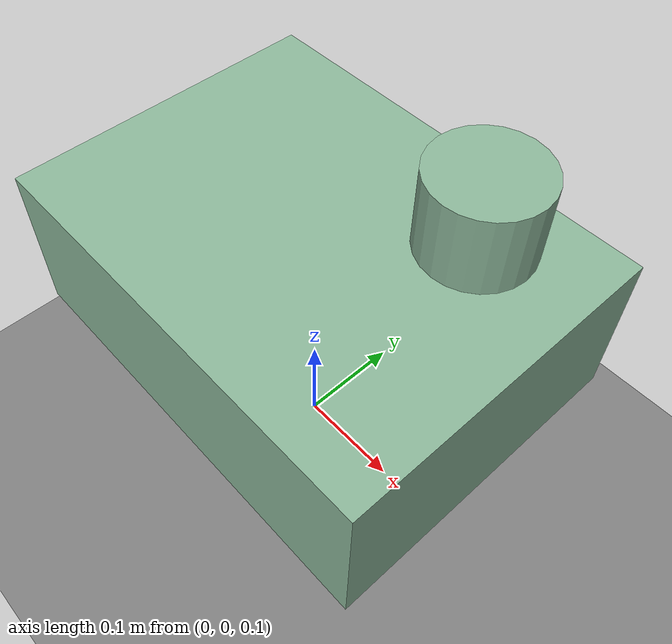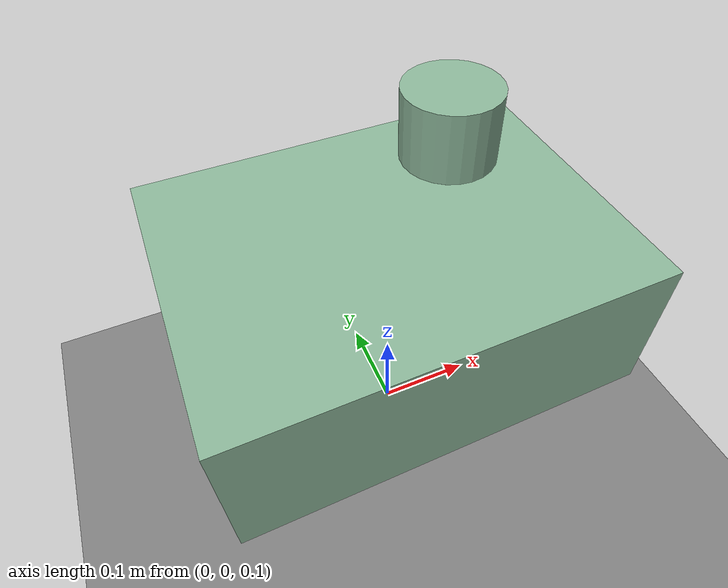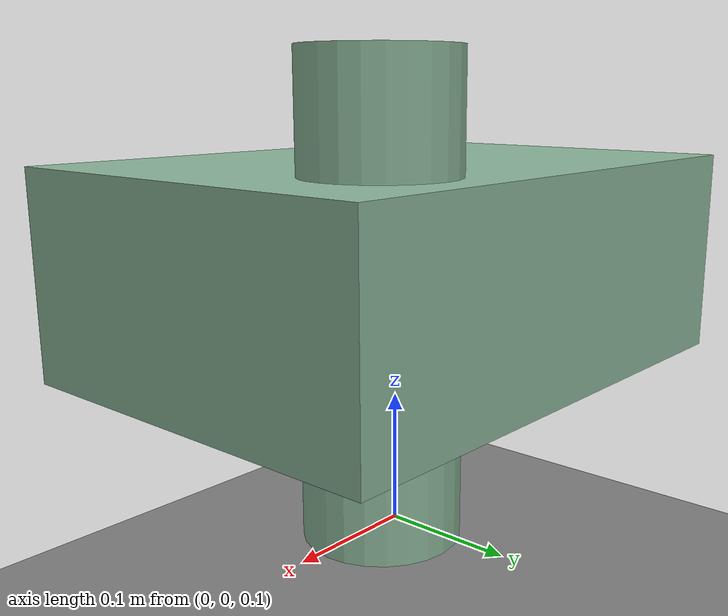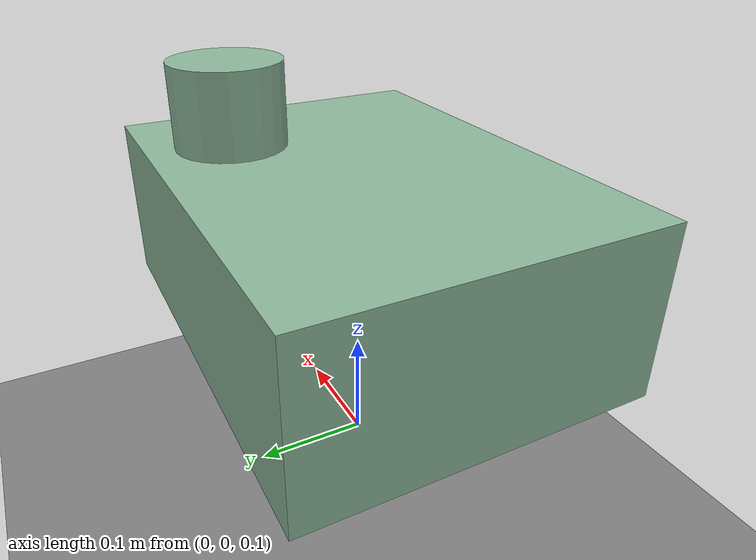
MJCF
<?xml version="1.0" ?>
<mujoco model="MuJoCo Model">
    <compiler angle="radian"/>
    <statistic extent="1" />
    <option gravity="0 0 -9.81" integrator="RK4" timestep='0.02'/>
    <size njmax="795" nconmax="250" nstack="631875" />
    <visual>
        <quality shadowsize="2048" />
        <map znear="0.8" zfar="3.2"/>
    </visual>
    <default class="main">
        <joint limited="true" armature="0.01" damping="0.7" /> <!-- damping was 0.2-->
        <geom margin="0.001" />
    </default>
    <asset>
        <material name="material1" specular="0.247985" shininess="0.21864" reflectance="0.232382" rgba="0.548814 0.715189 0.602763 1" />
        <material name="material0" rgba="0.548814 0.715189 0.602763 1" />
    </asset>
    <worldbody>
        <geom name="floor0" size="1 1 1" pos="0 0 0" type="plane" />
        <light pos="1 0 1.5" dir="-0.371391 0 -0.928477" castshadow="false" cutoff="90" exponent="1" diffuse="1 1 1" specular="0 0 0" />
        <body name="floor0" pos="1.5 1.4 0">
            <inertial pos="1.5 1.4 0" mass="0" diaginertia="0 0 0" />
        </body>
        <body name="geom0" pos="0 0 0.3">
            <inertial pos="0 0 0" mass="1" diaginertia="0.166667 0.166667 0.166667" />
            <joint name="geom0" pos="0 0 0" axis="1 0 0" type="free" limited='false' damping="0.01" />
            <geom name="geom0" size="0.2 0.15 0.075" type="box" material="material0"/>
            <geom name="geom1" size="0.05 0.15" type="cylinder" pos="0.1 0.075 0" material="material0"/>
        </body>
        <body name="walls" pos="0 0 0">
            <geom name="wall0" size="1 0.1 1" pos="0 1 0" type="box" rgba="1 0 0 0"/>
            <geom name="wall1" size="1 0.1 1" pos="0 -1 0" type="box" rgba="1 0 0 0"/>
            <geom name="wall2" size="0.1 1 1" pos="1 0 0" type="box" rgba="1 0 0 0"/>
            <geom name="wall3" size="0.1 1 1" pos="-1 0 0" type="box" rgba="1 0 0 0"/>
            <geom name="wall4" size="1 1 0.1" pos="0 0 0.9" type="box" rgba="1 0 0 0"/>
        </body>

        <body name="external_camera_body_0" pos="0 0 0">
            <camera euler="0 1 1.57" fovy="45" name="external_camera_0" pos="1.8 0 1.2"></camera>
        </body>
    </worldbody>
    <actuator>

        <motor gear="20 0 0 0 0 0" joint="geom0" name="geom0:motionX"/>
        <motor gear="0 20 0 0 0 0" joint="geom0" name="geom0:motionY"/>
        <motor gear="0 0 20 0 0 0" joint="geom0" name="geom0:motionZ"/>
        <motor gear="0 0 0 4 0 0" joint="geom0" name="geom0:motionWX"/>
        <motor gear="0 0 0 0 4 0" joint="geom0" name="geom0:motionWY"/>
        <motor gear="0 0 0 0 0 4" joint="geom0" name="geom0:motionWZ"/>

    </actuator>
</mujoco>
